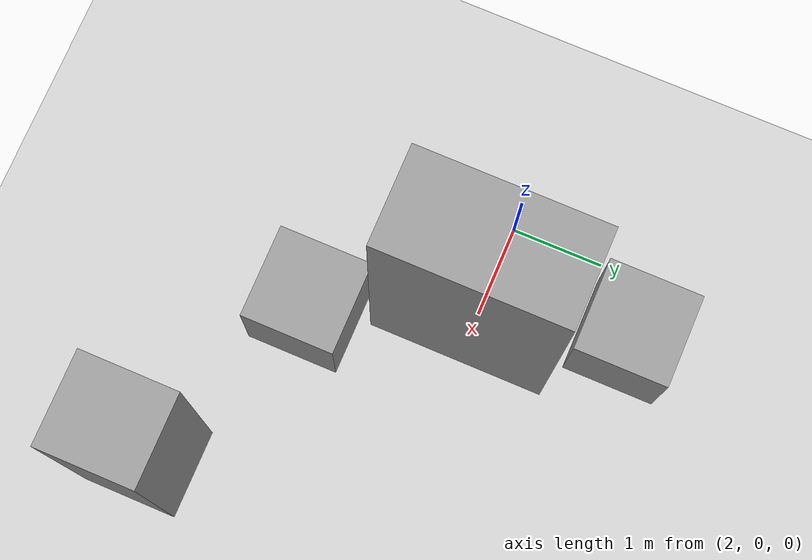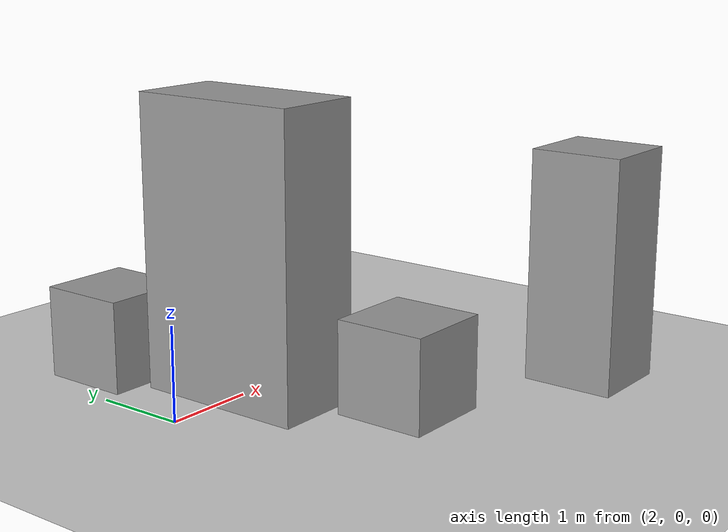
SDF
<sdf version="1.6">
 <world name="default">
  <light name="sun" type="directional">
   <pose>0 0 10 0 -0 0</pose>
   <diffuse>0.8 0.8 0.8 1</diffuse>
   <specular>0.2 0.2 0.2 1</specular>
   <attenuation>
    <range>1000</range>
    <constant>0.9</constant>
    <linear>0.01</linear>
    <quadratic>0.001</quadratic>
   </attenuation>
   <direction>-0.5 0.1 -0.9</direction>
  </light>
  <model name="ground_plane">
   <static>1</static>
   <link name="link">
    <collision name="collision">
     <geometry><plane><normal>0 0 1</normal><size>100 100</size></plane></geometry>
     <surface><friction><ode><mu>100</mu><mu2>50</mu2></ode></friction></surface>
    </collision>
    <visual name="visual">
     <cast_shadows>0</cast_shadows>
     <geometry><plane><normal>0 0 1</normal><size>100 100</size></plane></geometry>
     <material>
      <script><uri>file://media/materials/scripts/gazebo.material</uri><name>Gazebo/Grey</name></script>
     </material>
    </visual>
   </link>
  </model>
  <gravity>0 0 -9.8</gravity>
  <magnetic_field>6e-06 2.3e-05 -4.2e-05</magnetic_field>
  <atmosphere type="adiabatic"/>
  <physics name="default_physics" default="0" type="ode">
   <max_step_size>0.001</max_step_size>
   <real_time_factor>1</real_time_factor>
   <real_time_update_rate>1000</real_time_update_rate>
  </physics>
  <scene><ambient>0.4 0.4 0.4 1</ambient><background>0.7 0.7 0.7 1</background><shadows>1</shadows></scene>
  <spherical_coordinates>
   <surface_model>EARTH_WGS84</surface_model>
   <latitude_deg>0</latitude_deg>
   <longitude_deg>0</longitude_deg>
   <elevation>0</elevation>
   <heading_deg>0</heading_deg>
  </spherical_coordinates>
  <model name="unit_box">
   <pose>3.04688 -0.045641 1.57784 1e-06 -0 -0.000138</pose>
   <link name="link">
    <inertial>
     <mass>1</mass>
     <inertia>
      <ixx>0.166667</ixx>
      <ixy>0</ixy>
      <ixz>0</ixz>
      <iyy>0.166667</iyy>
      <iyz>0</iyz>
      <izz>0.166667</izz>
     </inertia>
    </inertial>
    <collision name="collision"><geometry><box><size>1 1.92006 3.15568</size></box></geometry></collision>
    <visual name="visual">
     <geometry><box><size>1 1.92006 3.15568</size></box></geometry>
     <material>
      <script><name>Gazebo/Grey</name><uri>file://media/materials/scripts/gazebo.material</uri></script>
     </material>
    </visual>
   </link>
  </model>
  <model name="unit_box_0">
   <pose>2.68044 1.52869 0.499995 -1e-05 0 0</pose>
   <link name="link">
    <inertial>
     <mass>1</mass>
     <inertia>
      <ixx>0.166667</ixx>
      <ixy>0</ixy>
      <ixz>0</ixz>
      <iyy>0.166667</iyy>
      <iyz>0</iyz>
      <izz>0.166667</izz>
     </inertia>
    </inertial>
    <collision name="collision"><geometry><box><size>1 1 1</size></box></geometry></collision>
    <visual name="visual">
     <geometry><box><size>1 1 1</size></box></geometry>
     <material>
      <script><name>Gazebo/Grey</name><uri>file://media/materials/scripts/gazebo.material</uri></script>
     </material>
    </visual>
   </link>
  </model>
  <model name="unit_box_1">
   <pose>3.66565 -1.63738 0.499995 0 1e-05 0</pose>
   <link name="link">
    <inertial>
     <mass>1</mass>
     <inertia>
      <ixx>0.166667</ixx>
      <ixy>0</ixy>
      <ixz>0</ixz>
      <iyy>0.166667</iyy>
      <iyz>0</iyz>
      <izz>0.166667</izz>
     </inertia>
    </inertial>
    <collision name="collision"><geometry><box><size>1 1 1</size></box></geometry></collision>
    <visual name="visual">
     <geometry><box><size>1 1 1</size></box></geometry>
     <material>
      <script><name>Gazebo/Grey</name><uri>file://media/materials/scripts/gazebo.material</uri></script>
     </material>
    </visual>
   </link>
  </model>
  <model name="unit_box_2">
   <pose>5.73098 -2.56388 1.25871 0 2e-06 0.000177</pose>
   <link name="link">
    <inertial>
     <mass>1</mass>
     <inertia>
      <ixx>0.166667</ixx>
      <ixy>0</ixy>
      <ixz>0</ixz>
      <iyy>0.166667</iyy>
      <iyz>0</iyz>
      <izz>0.166667</izz>
     </inertia>
    </inertial>
    <collision name="collision"><geometry><box><size>0.95204 1 2.51743</size></box></geometry></collision>
    <visual name="visual">
     <geometry><box><size>0.95204 1 2.51743</size></box></geometry>
     <material>
      <script><name>Gazebo/Grey</name><uri>file://media/materials/scripts/gazebo.material</uri></script>
     </material>
    </visual>
   </link>
  </model>
  <plugin name="ros_interface_plugin" filename="librotors_gazebo_ros_interface_plugin.so"/>
  <spherical_coordinates>
   <surface_model>EARTH_WGS84</surface_model>
   <latitude_deg>47.3667</latitude_deg>
   <longitude_deg>8.5500</longitude_deg>
   <elevation>500.0</elevation>
   <heading_deg>0</heading_deg>
  </spherical_coordinates>
  <physics type="ode">
   <ode>
    <solver><type>quick</type><iters>1000</iters><sor>1.3</sor></solver>
    <constraints>
     <cfm>0</cfm>
     <erp>0.2</erp>
     <contact_max_correcting_vel>100</contact_max_correcting_vel>
     <contact_surface_layer>0.001</contact_surface_layer>
    </constraints>
   </ode>
   <max_step_size>0.01</max_step_size>
   <real_time_factor>1</real_time_factor>
   <real_time_update_rate>100</real_time_update_rate>
   <gravity>0 0 -9.8</gravity>
  </physics>
  <plugin name="gazebo_octomap" filename="libBuildOctomapPlugin.so"/>
 </world>
</sdf>
